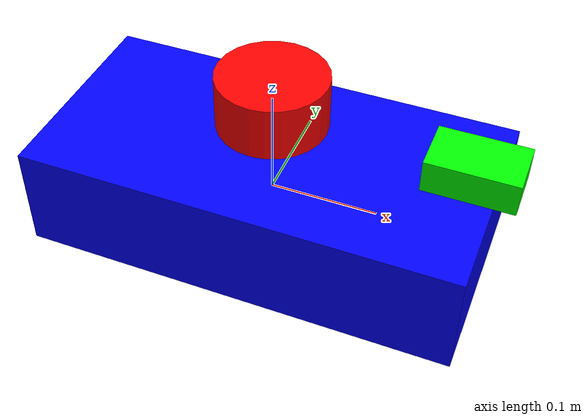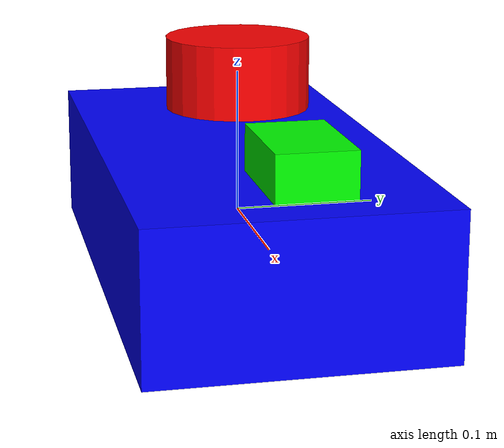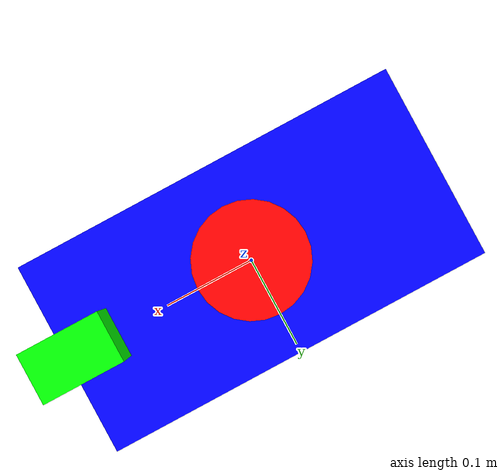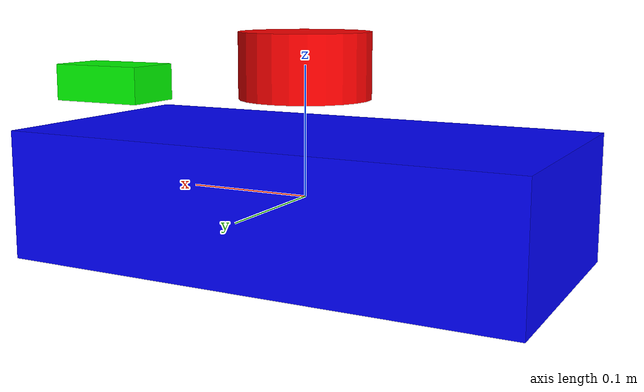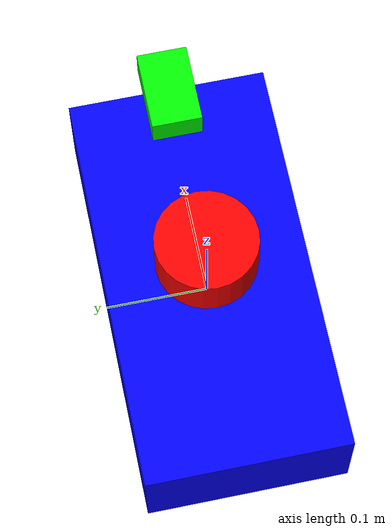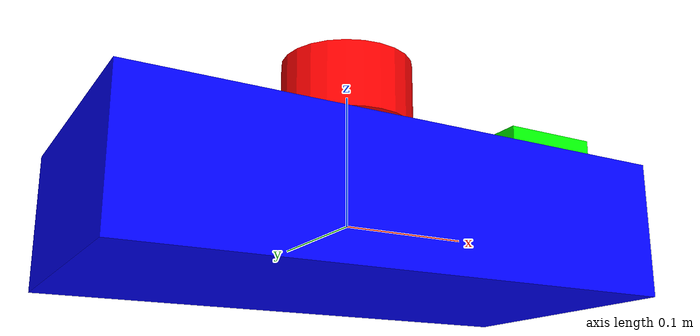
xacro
<?xml version="1.0"?>
<robot xmlns:xacro="http://www.ros.org/wiki/xacro" name="my_lidar_robot">

    <!-- 底盘 -->
    <link name="base_link">
        <visual>
            <geometry>
                <box size="0.4 0.2 0.1"/>
            </geometry>
            <material name="blue">
                <color rgba="0 0 1 1"/>
            </material>
        </visual>
        <collision>
            <geometry>
                <box size="0.4 0.2 0.1"/>
            </geometry>
        </collision>
    </link>

    <!-- 激光雷达 -->
    <link name="laser_link">
        <visual>
            <geometry>
                <cylinder length="0.05" radius="0.05"/>
            </geometry>
            <material name="red">
                <color rgba="1 0 0 1"/>
            </material>
        </visual>
        <collision>
            <geometry>
                <cylinder length="0.05" radius="0.05"/>
            </geometry>
        </collision>
    </link>

    <joint name="laser_joint" type="fixed">
        <parent link="base_link"/>
        <child link="laser_link"/>
        <origin xyz="0 0 0.1" rpy="0 0 0"/>
    </joint>

    <!-- 毫米波雷达 -->
    <link name="mmwave_link">
        <visual>
            <geometry>
                <box size="0.08 0.05 0.03"/>
            </geometry>
            <material name="green">
                <color rgba="0 1 0 1"/>
            </material>
        </visual>
        <collision>
            <geometry>
                <box size="0.08 0.05 0.03"/>
            </geometry>
        </collision>
    </link>

    <joint name="mmwave_joint" type="fixed">
        <parent link="base_link"/>
        <child link="mmwave_link"/>
        <!-- 放在机体前上方，朝前 -->
        <origin xyz="0.18 0 0.08" rpy="0 0 0"/>
    </joint>

    <!-- 激光插件 -->
    <xacro:include filename="$(find lidar_robot)/urdf/plugins/gazebo_laser_plugin.xacro"/>
    <xacro:gazebo_laser_plugin/>

    <!-- 毫米波插件 -->
    <xacro:include filename="$(find lidar_robot)/urdf/plugins/gazebo_mmwave_plugin.xacro"/>
    <xacro:gazebo_mmwave_plugin/>

</robot>
